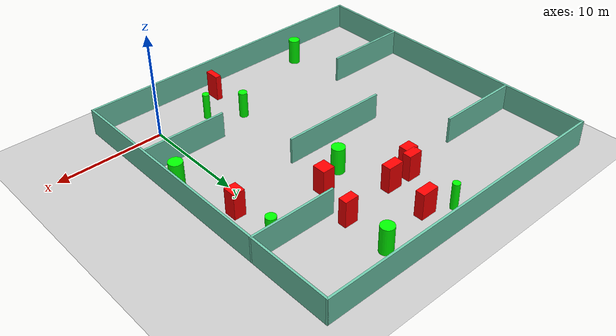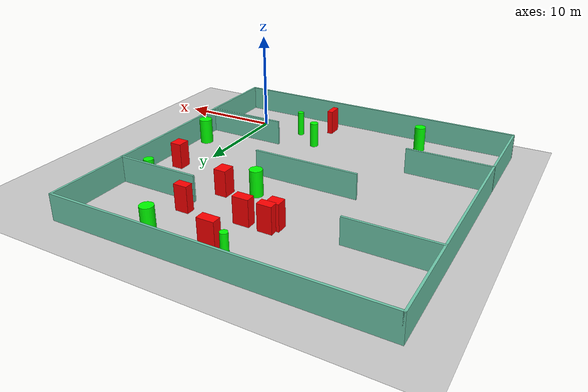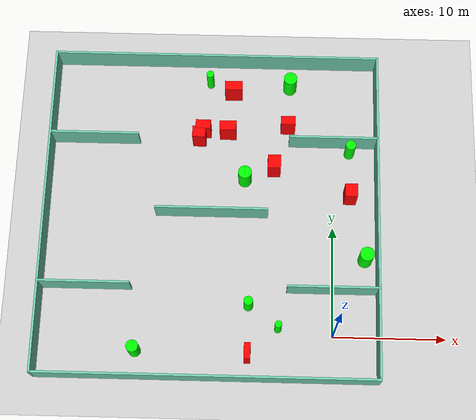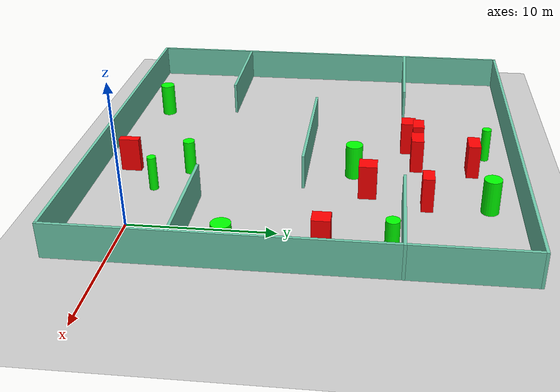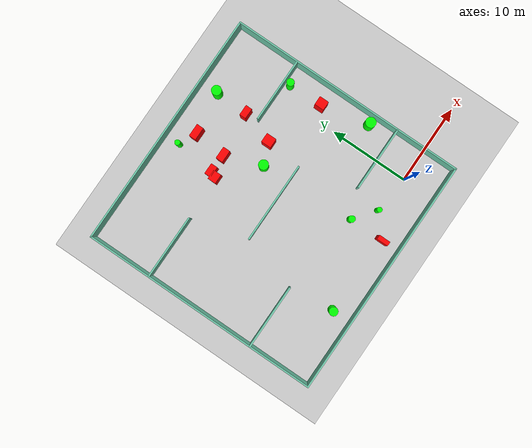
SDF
<sdf version="1.7">
 <world name="default">
  <light name="sun" type="directional">
   <pose>0 0 10 0 -0 0</pose>
   <diffuse>0.8 0.8 0.8 1</diffuse>
   <specular>0.2 0.2 0.2 1</specular>
   <attenuation>
    <range>1000</range>
    <constant>0.9</constant>
    <linear>0.01</linear>
    <quadratic>0.001</quadratic>
   </attenuation>
   <direction>-0.5 0.1 -0.9</direction>
   <spot><inner_angle>0</inner_angle><outer_angle>0</outer_angle><falloff>0</falloff></spot>
  </light>
  <model name="ground_plane">
   <static>1</static>
   <link name="link">
    <collision name="collision">
     <geometry><plane><normal>0 0 1</normal><size>100 100</size></plane></geometry>
     <surface>
      <contact><collide_bitmask>65535</collide_bitmask></contact>
      <friction><ode><mu>100</mu><mu2>50</mu2></ode></friction>
     </surface>
    </collision>
    <visual name="visual">
     <cast_shadows>0</cast_shadows>
     <geometry><plane><normal>0 0 1</normal><size>100 100</size></plane></geometry>
     <material>
      <script><uri>file://media/materials/scripts/gazebo.material</uri><name>Gazebo/Grey</name></script>
     </material>
    </visual>
   </link>
  </model>
  <gravity>0 0 -9.8</gravity>
  <magnetic_field>6e-06 2.3e-05 -4.2e-05</magnetic_field>
  <atmosphere type="adiabatic"/>
  <physics type="ode">
   <max_step_size>0.001</max_step_size>
   <real_time_factor>1</real_time_factor>
   <real_time_update_rate>1000</real_time_update_rate>
  </physics>
  <scene><ambient>0.4 0.4 0.4 1</ambient><background>0.7 0.7 0.7 1</background><shadows>1</shadows></scene>
  <spherical_coordinates>
   <surface_model>EARTH_WGS84</surface_model>
   <latitude_deg>0</latitude_deg>
   <longitude_deg>0</longitude_deg>
   <elevation>0</elevation>
   <heading_deg>0</heading_deg>
  </spherical_coordinates>
  <model name="my_base_walls">
   <link name="Wall_10">
    <collision name="Wall_10_Collision">
     <geometry><box><size>8.2 0.2 2.5</size></box></geometry>
     <pose>0 0 1.25 0 -0 0</pose>
    </collision>
    <visual name="Wall_10_Visual">
     <pose>0 0 1.25 0 -0 0</pose>
     <geometry><box><size>8.2 0.2 2.5</size></box></geometry>
     <material>
      <script><uri>file://media/materials/scripts/gazebo.material</uri><name>Gazebo/Grey</name></script>
      <ambient>0.435294 0.796078 0.67451 1</ambient>
     </material>
     <meta><layer>0</layer></meta>
    </visual>
    <pose>-11 -7 0 0 -0 0</pose>
   </link>
   <link name="Wall_12">
    <collision name="Wall_12_Collision">
     <geometry><box><size>8.2 0.2 2.5</size></box></geometry>
     <pose>0 0 1.25 0 -0 0</pose>
    </collision>
    <visual name="Wall_12_Visual">
     <pose>0 0 1.25 0 -0 0</pose>
     <geometry><box><size>8.2 0.2 2.5</size></box></geometry>
     <material>
      <script><uri>file://media/materials/scripts/gazebo.material</uri><name>Gazebo/Grey</name></script>
      <ambient>0.435294 0.796078 0.67451 1</ambient>
     </material>
     <meta><layer>0</layer></meta>
    </visual>
    <pose>-11 7 0 0 -0 0</pose>
   </link>
   <link name="Wall_14">
    <collision name="Wall_14_Collision">
     <geometry><box><size>8.2 0.2 2.5</size></box></geometry>
     <pose>0 0 1.25 0 -0 0</pose>
    </collision>
    <visual name="Wall_14_Visual">
     <pose>0 0 1.25 0 -0 0</pose>
     <geometry><box><size>8.2 0.2 2.5</size></box></geometry>
     <material>
      <script><uri>file://media/materials/scripts/gazebo.material</uri><name>Gazebo/Grey</name></script>
      <ambient>0.435294 0.796078 0.67451 1</ambient>
     </material>
     <meta><layer>0</layer></meta>
    </visual>
    <pose>11 7 0 0 -0 3.14159</pose>
   </link>
   <link name="Wall_16">
    <collision name="Wall_16_Collision">
     <geometry><box><size>10.2 0.2 2.5</size></box></geometry>
     <pose>0 0 1.25 0 -0 0</pose>
    </collision>
    <visual name="Wall_16_Visual">
     <pose>0 0 1.25 0 -0 0</pose>
     <geometry><box><size>10.2 0.2 2.5</size></box></geometry>
     <material>
      <script><uri>file://media/materials/scripts/gazebo.material</uri><name>Gazebo/Grey</name></script>
      <ambient>0.435294 0.796078 0.67451 1</ambient>
     </material>
     <meta><layer>0</layer></meta>
    </visual>
    <pose>0 0 0 0 -0 3.14159</pose>
   </link>
   <link name="Wall_2">
    <collision name="Wall_2_Collision">
     <geometry><box><size>30.2 0.2 2.5</size></box></geometry>
     <pose>0 0 1.25 0 -0 0</pose>
    </collision>
    <visual name="Wall_2_Visual">
     <pose>0 0 1.25 0 -0 0</pose>
     <geometry><box><size>30.2 0.2 2.5</size></box></geometry>
     <material>
      <script><uri>file://media/materials/scripts/gazebo.material</uri><name>Gazebo/Grey</name></script>
      <ambient>0.435294 0.796078 0.67451 1</ambient>
     </material>
     <meta><layer>0</layer></meta>
    </visual>
    <pose>0 -15 0 0 -0 3.14159</pose>
   </link>
   <link name="Wall_3">
    <collision name="Wall_3_Collision">
     <geometry><box><size>30.2 0.2 2.5</size></box></geometry>
     <pose>0 0 1.25 0 -0 0</pose>
    </collision>
    <visual name="Wall_3_Visual">
     <pose>0 0 1.25 0 -0 0</pose>
     <geometry><box><size>30.2 0.2 2.5</size></box></geometry>
     <material>
      <script><uri>file://media/materials/scripts/gazebo.material</uri><name>Gazebo/Grey</name></script>
      <ambient>0.435294 0.796078 0.67451 1</ambient>
     </material>
     <meta><layer>0</layer></meta>
    </visual>
    <pose>-15 0 0 0 -0 1.5708</pose>
   </link>
   <link name="Wall_4">
    <collision name="Wall_4_Collision">
     <geometry><box><size>30.2 0.2 2.5</size></box></geometry>
     <pose>0 0 1.25 0 -0 0</pose>
    </collision>
    <visual name="Wall_4_Visual">
     <pose>0 0 1.25 0 -0 0</pose>
     <geometry><box><size>30.2 0.2 2.5</size></box></geometry>
     <material>
      <script><uri>file://media/materials/scripts/gazebo.material</uri><name>Gazebo/Grey</name></script>
      <ambient>0.435294 0.796078 0.67451 1</ambient>
     </material>
     <meta><layer>0</layer></meta>
    </visual>
    <pose>0 15 0 0 -0 0</pose>
   </link>
   <link name="Wall_6">
    <collision name="Wall_6_Collision">
     <geometry><box><size>30.2 0.2 2.5</size></box></geometry>
     <pose>0 0 1.25 0 -0 0</pose>
    </collision>
    <visual name="Wall_6_Visual">
     <pose>0 0 1.25 0 -0 0</pose>
     <geometry><box><size>30.2 0.2 2.5</size></box></geometry>
     <material>
      <script><uri>file://media/materials/scripts/gazebo.material</uri><name>Gazebo/Grey</name></script>
      <ambient>0.435294 0.796078 0.67451 1</ambient>
     </material>
     <meta><layer>0</layer></meta>
    </visual>
    <pose>15 0 0 0 -0 1.5708</pose>
   </link>
   <link name="Wall_8">
    <collision name="Wall_8_Collision">
     <geometry><box><size>8.2 0.2 2.5</size></box></geometry>
     <pose>0 0 1.25 0 -0 0</pose>
    </collision>
    <visual name="Wall_8_Visual">
     <pose>0 0 1.25 0 -0 0</pose>
     <geometry><box><size>8.2 0.2 2.5</size></box></geometry>
     <material>
      <script><uri>file://media/materials/scripts/gazebo.material</uri><name>Gazebo/Grey</name></script>
      <ambient>0.435294 0.796078 0.67451 1</ambient>
     </material>
     <meta><layer>0</layer></meta>
    </visual>
    <pose>11 -7 0 0 -0 3.14159</pose>
   </link>
   <static>1</static>
   <pose>-11 11 0 0 -0 0</pose>
  </model>
  <model name="cylinder1">
   <static>1</static>
   <link name="link">
    <inertial>
     <mass>1</mass>
     <inertia><ixx>0.5</ixx><ixy>0</ixy><ixz>0</ixz><iyy>0.5</iyy><iyz>0</iyz><izz>1</izz></inertia>
    </inertial>
    <collision name="collision">
     <geometry><cylinder><radius>0.4610609793744788</radius><length>2.5</length></cylinder></geometry>
    </collision>
    <visual name="visual">
     <geometry><cylinder><radius>0.4610609793744788</radius><length>2.5</length></cylinder></geometry>
     <material>
      <ambient>0 1 0 1</ambient>
      <diffuse>0 1 0 1</diffuse>
      <specular>0.1 0.1 0.1 1</specular>
      <emissive>0 0 0 0</emissive>
     </material>
    </visual>
   </link>
   <pose>1.5344731933655709 17.277484736024373 1.25 0 0 0</pose>
  </model>
  <model name="cylinder2">
   <static>1</static>
   <link name="link">
    <inertial>
     <mass>1</mass>
     <inertia><ixx>0.5</ixx><ixy>0</ixy><ixz>0</ixz><iyy>0.5</iyy><iyz>0</iyz><izz>1</izz></inertia>
    </inertial>
    <collision name="collision">
     <geometry><cylinder><radius>0.31626943709874883</radius><length>2.5</length></cylinder></geometry>
    </collision>
    <visual name="visual">
     <geometry><cylinder><radius>0.31626943709874883</radius><length>2.5</length></cylinder></geometry>
     <material>
      <ambient>0 1 0 1</ambient>
      <diffuse>0 1 0 1</diffuse>
      <specular>0.1 0.1 0.1 1</specular>
      <emissive>0 0 0 0</emissive>
     </material>
    </visual>
   </link>
   <pose>-4.808303094243932 0.5801191972380995 1.25 0 0 0</pose>
  </model>
  <model name="cylinder3">
   <static>1</static>
   <link name="link">
    <inertial>
     <mass>1</mass>
     <inertia><ixx>0.5</ixx><ixy>0</ixy><ixz>0</ixz><iyy>0.5</iyy><iyz>0</iyz><izz>1</izz></inertia>
    </inertial>
    <collision name="collision">
     <geometry><cylinder><radius>0.33779228750225077</radius><length>2.5</length></cylinder></geometry>
    </collision>
    <visual name="visual">
     <geometry><cylinder><radius>0.33779228750225077</radius><length>2.5</length></cylinder></geometry>
     <material>
      <ambient>0 1 0 1</ambient>
      <diffuse>0 1 0 1</diffuse>
      <specular>0.1 0.1 0.1 1</specular>
      <emissive>0 0 0 0</emissive>
     </material>
    </visual>
   </link>
   <pose>-11.541445630324798 24.040631007509628 1.25 0 0 0</pose>
  </model>
  <model name="cylinder4">
   <static>1</static>
   <link name="link">
    <inertial>
     <mass>1</mass>
     <inertia><ixx>0.5</ixx><ixy>0</ixy><ixz>0</ixz><iyy>0.5</iyy><iyz>0</iyz><izz>1</izz></inertia>
    </inertial>
    <collision name="collision">
     <geometry><cylinder><radius>0.6096828011968488</radius><length>2.5</length></cylinder></geometry>
    </collision>
    <visual name="visual">
     <geometry><cylinder><radius>0.6096828011968488</radius><length>2.5</length></cylinder></geometry>
     <material>
      <ambient>0 1 0 1</ambient>
      <diffuse>0 1 0 1</diffuse>
      <specular>0.1 0.1 0.1 1</specular>
      <emissive>0 0 0 0</emissive>
     </material>
    </visual>
   </link>
   <pose>-4.0548426420709625 23.77757758128318 1.25 0 0 0</pose>
  </model>
  <model name="cylinder5">
   <static>1</static>
   <link name="link">
    <inertial>
     <mass>1</mass>
     <inertia><ixx>0.5</ixx><ixy>0</ixy><ixz>0</ixz><iyy>0.5</iyy><iyz>0</iyz><izz>1</izz></inertia>
    </inertial>
    <collision name="collision">
     <geometry><cylinder><radius>0.5366948057947333</radius><length>2.5</length></cylinder></geometry>
    </collision>
    <visual name="visual">
     <geometry><cylinder><radius>0.5366948057947333</radius><length>2.5</length></cylinder></geometry>
     <material>
      <ambient>0 1 0 1</ambient>
      <diffuse>0 1 0 1</diffuse>
      <specular>0.1 0.1 0.1 1</specular>
      <emissive>0 0 0 0</emissive>
     </material>
    </visual>
   </link>
   <pose>-17.345354367966415 -1.611411247287113 1.25 0 0 0</pose>
  </model>
  <model name="cylinder6">
   <static>1</static>
   <link name="link">
    <inertial>
     <mass>1</mass>
     <inertia><ixx>0.5</ixx><ixy>0</ixy><ixz>0</ixz><iyy>0.5</iyy><iyz>0</iyz><izz>1</izz></inertia>
    </inertial>
    <collision name="collision">
     <geometry><cylinder><radius>0.4125110006198861</radius><length>2.5</length></cylinder></geometry>
    </collision>
    <visual name="visual">
     <geometry><cylinder><radius>0.4125110006198861</radius><length>2.5</length></cylinder></geometry>
     <material>
      <ambient>0 1 0 1</ambient>
      <diffuse>0 1 0 1</diffuse>
      <specular>0.1 0.1 0.1 1</specular>
      <emissive>0 0 0 0</emissive>
     </material>
    </visual>
   </link>
   <pose>-7.468423585728269 2.5852014958599776 1.25 0 0 0</pose>
  </model>
  <model name="cylinder7">
   <static>1</static>
   <link name="link">
    <inertial>
     <mass>1</mass>
     <inertia><ixx>0.5</ixx><ixy>0</ixy><ixz>0</ixz><iyy>0.5</iyy><iyz>0</iyz><izz>1</izz></inertia>
    </inertial>
    <collision name="collision">
     <geometry><cylinder><radius>0.640328488679496</radius><length>2.5</length></cylinder></geometry>
    </collision>
    <visual name="visual">
     <geometry><cylinder><radius>0.640328488679496</radius><length>2.5</length></cylinder></geometry>
     <material>
      <ambient>0 1 0 1</ambient>
      <diffuse>0 1 0 1</diffuse>
      <specular>0.1 0.1 0.1 1</specular>
      <emissive>0 0 0 0</emissive>
     </material>
    </visual>
   </link>
   <pose>2.92470828925153 7.037277873233247 1.25 0 0 0</pose>
  </model>
  <model name="cylinder8">
   <static>1</static>
   <link name="link">
    <inertial>
     <mass>1</mass>
     <inertia><ixx>0.5</ixx><ixy>0</ixy><ixz>0</ixz><iyy>0.5</iyy><iyz>0</iyz><izz>1</izz></inertia>
    </inertial>
    <collision name="collision">
     <geometry><cylinder><radius>0.6077783227211973</radius><length>2.5</length></cylinder></geometry>
    </collision>
    <visual name="visual">
     <geometry><cylinder><radius>0.6077783227211973</radius><length>2.5</length></cylinder></geometry>
     <material>
      <ambient>0 1 0 1</ambient>
      <diffuse>0 1 0 1</diffuse>
      <specular>0.1 0.1 0.1 1</specular>
      <emissive>0 0 0 0</emissive>
     </material>
    </visual>
   </link>
   <pose>-8.070140634631102 14.443249079681824 1.25 0 0 0</pose>
  </model>
  <model name="box1">
   <static>1</static>
   <link name="link">
    <inertial>
     <mass>1</mass>
     <inertia><ixx>0.083</ixx><ixy>0</ixy><ixz>0</ixz><iyy>0.083</iyy><iyz>0</iyz><izz>0.083</izz></inertia>
    </inertial>
    <collision name="collision">
     <geometry><box><size>1.1817583218688048 1.2637878561013376 2.5</size></box></geometry>
    </collision>
    <visual name="visual">
     <geometry><box><size>1.1817583218688048 1.2637878561013376 2.5</size></box></geometry>
     <material>
      <ambient>1 0 0 1</ambient>
      <diffuse>1 0 0 1</diffuse>
      <specular>0.1 0.1 0.1 1</specular>
      <emissive>0 0 0 0</emissive>
     </material>
    </visual>
    <sensor name="my_contact" type="contact">
     <contact><collision>box_collision</collision><topic>__default_topic__</topic></contact>
    </sensor>
   </link>
   <pose>-5.421156519512959 15.532419125941875 1.25 0 0 0</pose>
  </model>
  <model name="box2">
   <static>1</static>
   <link name="link">
    <inertial>
     <mass>1</mass>
     <inertia><ixx>0.083</ixx><ixy>0</ixy><ixz>0</ixz><iyy>0.083</iyy><iyz>0</iyz><izz>0.083</izz></inertia>
    </inertial>
    <collision name="collision">
     <geometry><box><size>1.6130620946944398 0.8713333564222681 2.5</size></box></geometry>
    </collision>
    <visual name="visual">
     <geometry><box><size>1.6130620946944398 0.8713333564222681 2.5</size></box></geometry>
     <material>
      <ambient>1 0 0 1</ambient>
      <diffuse>1 0 0 1</diffuse>
      <specular>0.1 0.1 0.1 1</specular>
      <emissive>0 0 0 0</emissive>
     </material>
    </visual>
    <sensor name="my_contact" type="contact">
     <contact><collision>box_collision</collision><topic>__default_topic__</topic></contact>
    </sensor>
   </link>
   <pose>-9.32417088961209 22.949948410594313 1.25 0 0 0</pose>
  </model>
  <model name="box3">
   <static>1</static>
   <link name="link">
    <inertial>
     <mass>1</mass>
     <inertia><ixx>0.083</ixx><ixy>0</ixy><ixz>0</ixz><iyy>0.083</iyy><iyz>0</iyz><izz>0.083</izz></inertia>
    </inertial>
    <collision name="collision">
     <geometry><box><size>0.56039751106983 1.446368883197891 2.5</size></box></geometry>
    </collision>
    <visual name="visual">
     <geometry><box><size>0.56039751106983 1.446368883197891 2.5</size></box></geometry>
     <material>
      <ambient>1 0 0 1</ambient>
      <diffuse>1 0 0 1</diffuse>
      <specular>0.1 0.1 0.1 1</specular>
      <emissive>0 0 0 0</emissive>
     </material>
    </visual>
    <sensor name="my_contact" type="contact">
     <contact><collision>box_collision</collision><topic>__default_topic__</topic></contact>
    </sensor>
   </link>
   <pose>-7.458225107140521 -1.7744615256672325 1.25 0 0 0</pose>
  </model>
  <model name="box4">
   <static>1</static>
   <link name="link">
    <inertial>
     <mass>1</mass>
     <inertia><ixx>0.083</ixx><ixy>0</ixy><ixz>0</ixz><iyy>0.083</iyy><iyz>0</iyz><izz>0.083</izz></inertia>
    </inertial>
    <collision name="collision">
     <geometry><box><size>1.1096394148699282 1.205063372991634 2.5</size></box></geometry>
    </collision>
    <visual name="visual">
     <geometry><box><size>1.1096394148699282 1.205063372991634 2.5</size></box></geometry>
     <material>
      <ambient>1 0 0 1</ambient>
      <diffuse>1 0 0 1</diffuse>
      <specular>0.1 0.1 0.1 1</specular>
      <emissive>0 0 0 0</emissive>
     </material>
    </visual>
    <sensor name="my_contact" type="contact">
     <contact><collision>box_collision</collision><topic>__default_topic__</topic></contact>
    </sensor>
   </link>
   <pose>1.565443840077144 12.95046781480361 1.25 0 0 0</pose>
  </model>
  <model name="box5">
   <static>1</static>
   <link name="link">
    <inertial>
     <mass>1</mass>
     <inertia><ixx>0.083</ixx><ixy>0</ixy><ixz>0</ixz><iyy>0.083</iyy><iyz>0</iyz><izz>0.083</izz></inertia>
    </inertial>
    <collision name="collision">
     <geometry><box><size>1.3717858920644812 0.8285648913551251 2.5</size></box></geometry>
    </collision>
    <visual name="visual">
     <geometry><box><size>1.3717858920644812 0.8285648913551251 2.5</size></box></geometry>
     <material>
      <ambient>1 0 0 1</ambient>
      <diffuse>1 0 0 1</diffuse>
      <specular>0.1 0.1 0.1 1</specular>
      <emissive>0 0 0 0</emissive>
     </material>
    </visual>
    <sensor name="my_contact" type="contact">
     <contact><collision>box_collision</collision><topic>__default_topic__</topic></contact>
    </sensor>
   </link>
   <pose>-12.009525833863497 19.04182499375826 1.25 0 0 0</pose>
  </model>
  <model name="box6">
   <static>1</static>
   <link name="link">
    <inertial>
     <mass>1</mass>
     <inertia><ixx>0.083</ixx><ixy>0</ixy><ixz>0</ixz><iyy>0.083</iyy><iyz>0</iyz><izz>0.083</izz></inertia>
    </inertial>
    <collision name="collision">
     <geometry><box><size>1.3176053830333805 0.8066118591167148 2.5</size></box></geometry>
    </collision>
    <visual name="visual">
     <geometry><box><size>1.3176053830333805 0.8066118591167148 2.5</size></box></geometry>
     <material>
      <ambient>1 0 0 1</ambient>
      <diffuse>1 0 0 1</diffuse>
      <specular>0.1 0.1 0.1 1</specular>
      <emissive>0 0 0 0</emissive>
     </material>
    </visual>
    <sensor name="my_contact" type="contact">
     <contact><collision>box_collision</collision><topic>__default_topic__</topic></contact>
    </sensor>
   </link>
   <pose>-4.20127484283589 19.584815224700343 1.25 0 0 0</pose>
  </model>
  <model name="box7">
   <static>1</static>
   <link name="link">
    <inertial>
     <mass>1</mass>
     <inertia><ixx>0.083</ixx><ixy>0</ixy><ixz>0</ixz><iyy>0.083</iyy><iyz>0</iyz><izz>0.083</izz></inertia>
    </inertial>
    <collision name="collision">
     <geometry><box><size>1.1921118140593339 1.033974760896143 2.5</size></box></geometry>
    </collision>
    <visual name="visual">
     <geometry><box><size>1.1921118140593339 1.033974760896143 2.5</size></box></geometry>
     <material>
      <ambient>1 0 0 1</ambient>
      <diffuse>1 0 0 1</diffuse>
      <specular>0.1 0.1 0.1 1</specular>
      <emissive>0 0 0 0</emissive>
     </material>
    </visual>
    <sensor name="my_contact" type="contact">
     <contact><collision>box_collision</collision><topic>__default_topic__</topic></contact>
    </sensor>
   </link>
   <pose>-12.378708000788253 18.29472323955052 1.25 0 0 0</pose>
  </model>
  <model name="box8">
   <static>1</static>
   <link name="link">
    <inertial>
     <mass>1</mass>
     <inertia><ixx>0.083</ixx><ixy>0</ixy><ixz>0</ixz><iyy>0.083</iyy><iyz>0</iyz><izz>0.083</izz></inertia>
    </inertial>
    <collision name="collision">
     <geometry><box><size>1.5319167890109215 0.8877250972430002 2.5</size></box></geometry>
    </collision>
    <visual name="visual">
     <geometry><box><size>1.5319167890109215 0.8877250972430002 2.5</size></box></geometry>
     <material>
      <ambient>1 0 0 1</ambient>
      <diffuse>1 0 0 1</diffuse>
      <specular>0.1 0.1 0.1 1</specular>
      <emissive>0 0 0 0</emissive>
     </material>
    </visual>
    <sensor name="my_contact" type="contact">
     <contact><collision>box_collision</collision><topic>__default_topic__</topic></contact>
    </sensor>
   </link>
   <pose>-9.737382495096359 18.949538366453318 1.25 0 0 0</pose>
  </model>
 </world>
</sdf>
